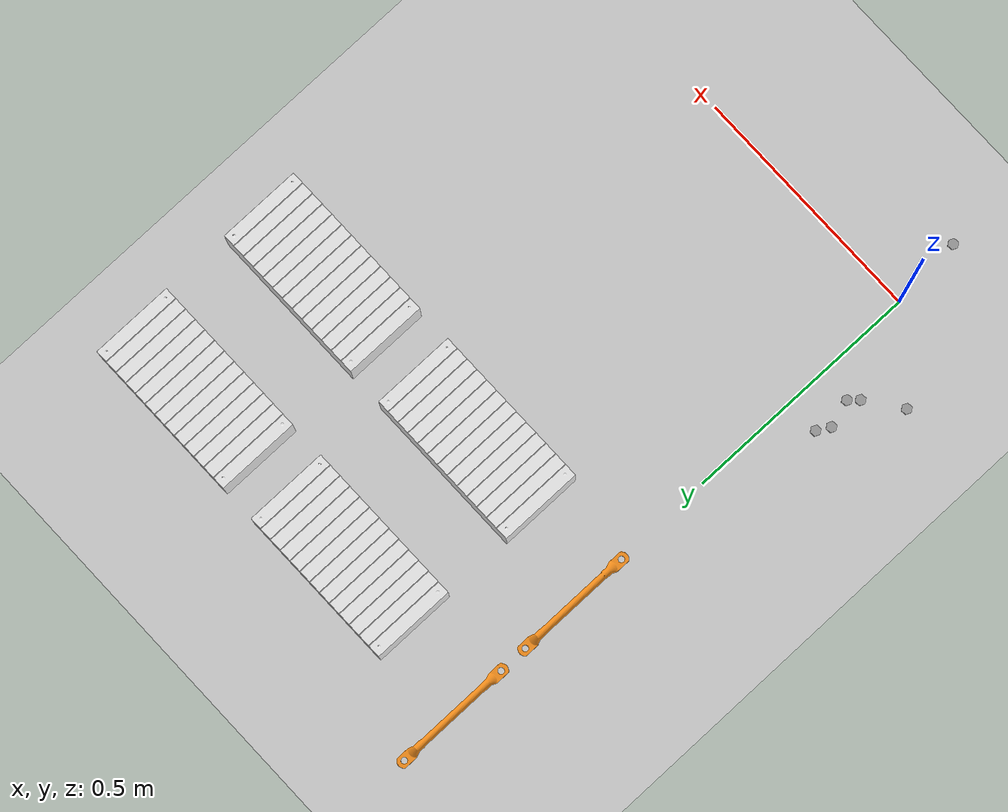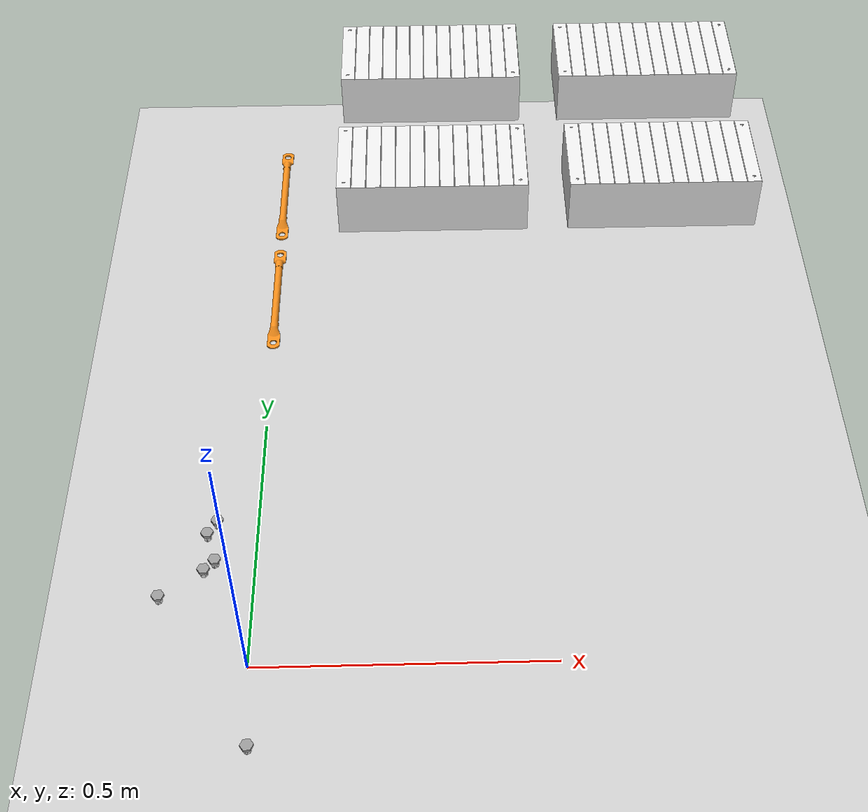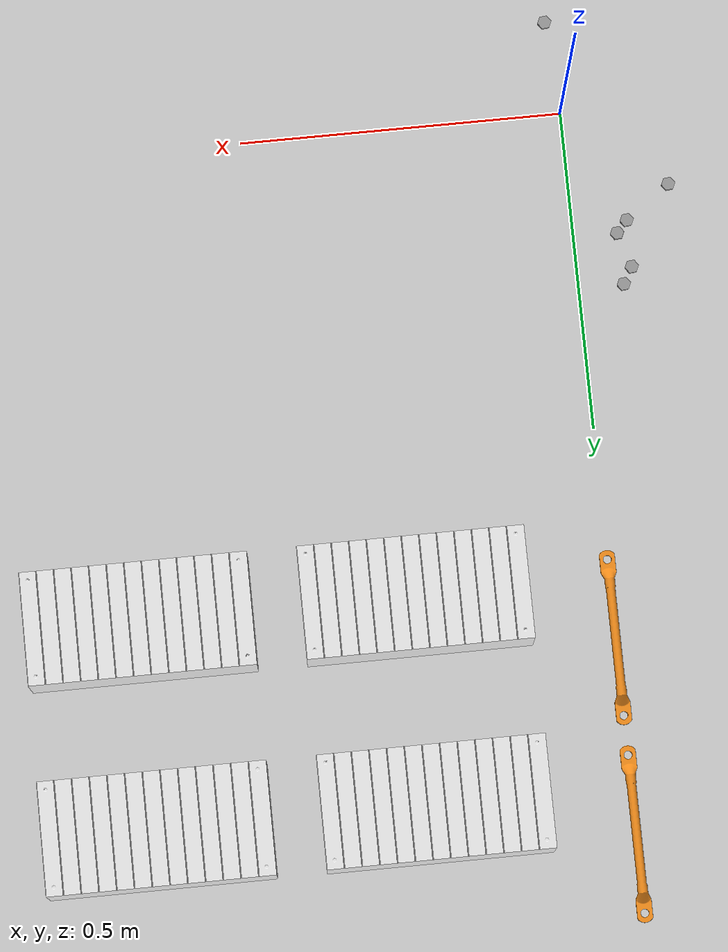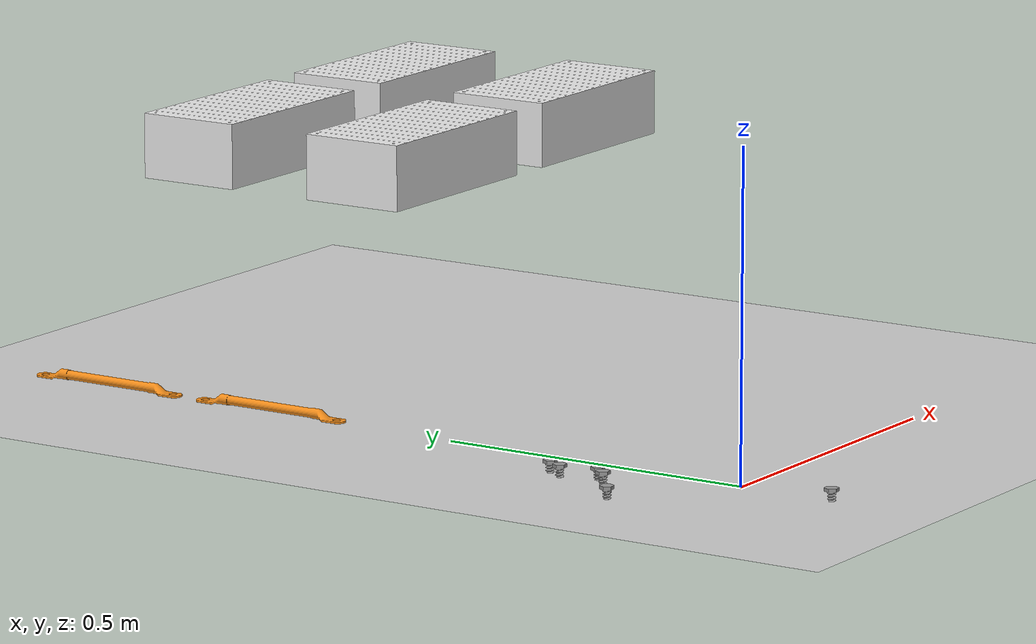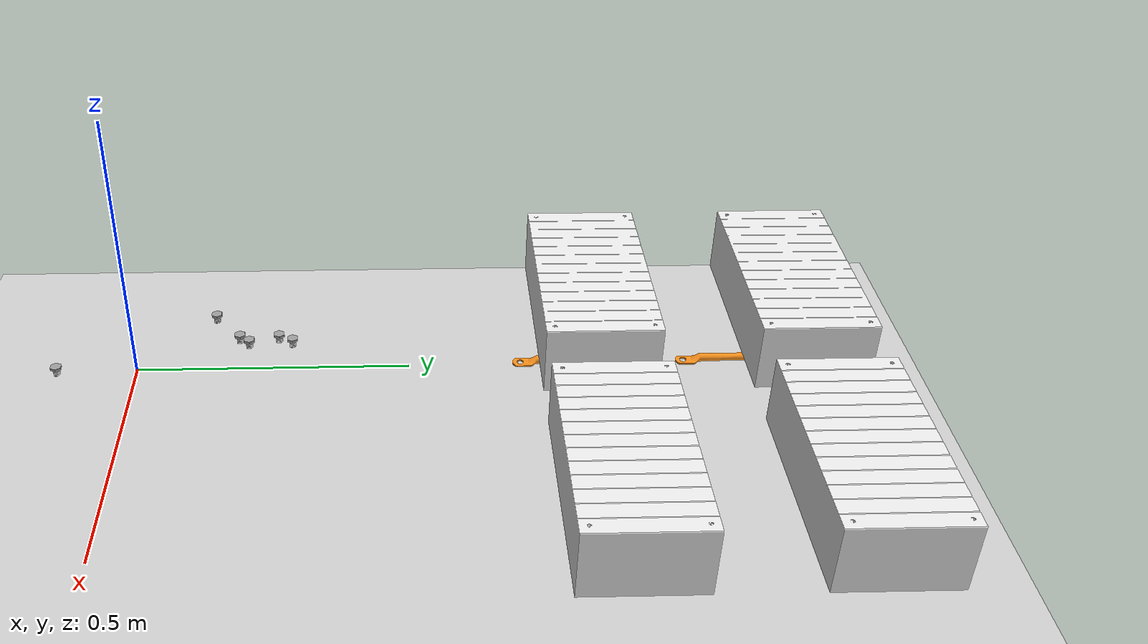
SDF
<sdf version="1.6">
 <world name="Pack6">
  <include><uri>model://sun</uri></include>
  <include><uri>model://ground_plane</uri></include>
  <include>
   <uri>/home/wanghu26/battery_ws/src/battery_model/model_editor_models/HW_battery_module_sc_v_half</uri>
   <pose>0.308 0.775 0.40 0 0 0</pose>
  </include>
  <include>
   <uri>/home/wanghu26/battery_ws/src/battery_model/model_editor_models/HW_battery_module_sc_v_1_half</uri>
   <pose>0.308 1.078 0.40 0 0 0</pose>
  </include>
  <include>
   <uri>/home/wanghu26/battery_ws/src/battery_model/model_editor_models/HW_battery_module_sc_v_2_half</uri>
   <pose>0.71 1.078 0.40 0 0 0</pose>
  </include>
  <include>
   <uri>/home/wanghu26/battery_ws/src/battery_model/model_editor_models/HW_battery_module_sc_v_3_half</uri>
   <pose>0.71 0.775 0.40 0 0 0</pose>
  </include>
  <include>
   <uri>/home/wanghu26/battery_ws/src/battery_model/model_editor_models/HW_tap_bolt_sc_f_0</uri>
   <pose>-0.155 0.13 0 0 0 0</pose>
  </include>
  <include>
   <uri>/home/wanghu26/battery_ws/src/battery_model/model_editor_models/HW_tap_bolt_sc_f_1</uri>
   <pose>-0.07 0.2810 0 0 0 0</pose>
  </include>
  <include>
   <uri>/home/wanghu26/battery_ws/src/battery_model/model_editor_models/HW_tap_bolt_sc_f_2</uri>
   <pose>0.01 -0.145 0 0 0 0</pose>
  </include>
  <include>
   <uri>/home/wanghu26/battery_ws/src/battery_model/model_editor_models/HW_tap_bolt_sc_f_3</uri>
   <pose>-0.085 0.255 0 0 0 0</pose>
  </include>
  <include>
   <uri>/home/wanghu26/battery_ws/src/battery_model/model_editor_models/HW_tap_bolt_sc_f_4</uri>
   <pose>-0.085 0.1810 0 0 0 0</pose>
  </include>
  <include>
   <uri>/home/wanghu26/battery_ws/src/battery_model/model_editor_models/HW_tap_bolt_sc_f_5</uri>
   <pose>-0.068 0.200 0 0 0 0</pose>
  </include>
  <include>
   <uri>/home/wanghu26/battery_ws/src/battery_model/model_editor_models/HW_HV_cable_sc_f</uri>
   <pose>0 1.128 0.01 0 0 0</pose>
  </include>
  <include>
   <uri>/home/wanghu26/battery_ws/src/battery_model/model_editor_models/HW_HV_cable_sc_f_1</uri>
   <pose>0.0 0.826 0.01 0 0 0</pose>
  </include>
 </world>
</sdf>

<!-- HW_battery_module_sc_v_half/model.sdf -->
<sdf version='1.6'>
  <model name='HW_battery_module_sc_v_half'>
    <link name='link_1'>
      <inertial>
        <mass>0.1</mass>
        <inertia>
          <ixx>0.01275</ixx>
          <ixy>0</ixy>
          <ixz>0</ixz>
          <iyy>0.03997</iyy>
          <iyz>0</iyz>
          <izz>0.04538</izz>
        </inertia>
      </inertial>
      <pose>-0 0 0 0 -0 0</pose>
      <visual name='visual'>
         <pose frame=''>0 0 -0.05 0 -0 0</pose>
        <geometry>
          <mesh>
            <uri>/home/wanghu26/battery_ws/src/battery_model/battery_model_stl/HW_Battery Module.stl</uri>
            <scale>0.5 0.5 0.5</scale>
          </mesh>
        </geometry>
        <material>
          <lighting>1</lighting>
          <script>
            <uri>file://media/materials/scripts/gazebo.material</uri>
            <name>Gazebo/White</name>
          </script>
          <shader type='pixel'/>
        </material>
        <transparency>0</transparency>
        <cast_shadows>1</cast_shadows>
      </visual>
      <collision name='collision'>
        <laser_retro>0</laser_retro>
        <max_contacts>10</max_contacts>
        <pose frame=''>0 0 -0.05 0 -0 0</pose>
        <geometry>
          <box>
            <size>0.33 0.165 0.105</size>
          </box>
        </geometry>
        <surface>
          <friction>
            <ode>
              <mu>1</mu>
              <mu2>1</mu2>
              <fdir1>0 0 0</fdir1>
              <slip1>0</slip1>
              <slip2>0</slip2>
            </ode>
            <torsional>
              <coefficient>1</coefficient>
              <patch_radius>0</patch_radius>
              <surface_radius>0</surface_radius>
              <use_patch_radius>1</use_patch_radius>
              <ode>
                <slip>0</slip>
              </ode>
            </torsional>
          </friction>
          <bounce>
            <restitution_coefficient>0</restitution_coefficient>
            <threshold>1e+06</threshold>
          </bounce>
          <contact>
            <collide_without_contact>0</collide_without_contact>
            <collide_without_contact_bitmask>1</collide_without_contact_bitmask>
            <collide_bitmask>1</collide_bitmask>
            <ode>
              <soft_cfm>0</soft_cfm>
              <soft_erp>0.2</soft_erp>
              <kp>1e+13</kp>
              <kd>1</kd>
              <max_vel>0.01</max_vel>
              <min_depth>0.0001</min_depth>
            </ode>
            <bullet>
              <split_impulse>1</split_impulse>
              <split_impulse_penetration_threshold>-0.01</split_impulse_penetration_threshold>
              <soft_cfm>0</soft_cfm>
              <soft_erp>0.2</soft_erp>
              <kp>1e+13</kp>
              <kd>1</kd>
            </bullet>
          </contact>
        </surface>
      </collision>
    </link>
    <static>0</static>
    <allow_auto_disable>1</allow_auto_disable>
  </model>
</sdf>

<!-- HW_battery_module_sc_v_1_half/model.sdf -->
<sdf version='1.6'>
  <model name='HW_battery_module_sc_v_1_half'>
    <link name='link_1'>
      <inertial>
        <mass>0.1</mass>
        <inertia>
          <ixx>0.01275</ixx>
          <ixy>0</ixy>
          <ixz>0</ixz>
          <iyy>0.03997</iyy>
          <iyz>0</iyz>
          <izz>0.04538</izz>
        </inertia>
      </inertial>
      <pose>-0 0 0 0 -0 0</pose>
      <visual name='visual'>
         <pose frame=''>0 0 -0.05 0 -0 0</pose>
        <geometry>
          <mesh>
            <uri>/home/wanghu26/battery_ws/src/battery_model/battery_model_stl/HW_Battery Module.stl</uri>
            <scale>0.5 0.5 0.5</scale>
          </mesh>
        </geometry>
        <material>
          <lighting>1</lighting>
          <script>
            <uri>file://media/materials/scripts/gazebo.material</uri>
            <name>Gazebo/White</name>
          </script>
          <shader type='pixel'/>
        </material>
        <transparency>0</transparency>
        <cast_shadows>1</cast_shadows>
      </visual>
      <collision name='collision'>
        <laser_retro>0</laser_retro>
        <max_contacts>10</max_contacts>
        <pose frame=''>0 0 -0.05 0 -0 0</pose>
        <geometry>
          <box>
            <size>0.33 0.165 0.105</size>
          </box>
        </geometry>
        <surface>
          <friction>
            <ode>
              <mu>1</mu>
              <mu2>1</mu2>
              <fdir1>0 0 0</fdir1>
              <slip1>0</slip1>
              <slip2>0</slip2>
            </ode>
            <torsional>
              <coefficient>1</coefficient>
              <patch_radius>0</patch_radius>
              <surface_radius>0</surface_radius>
              <use_patch_radius>1</use_patch_radius>
              <ode>
                <slip>0</slip>
              </ode>
            </torsional>
          </friction>
          <bounce>
            <restitution_coefficient>0</restitution_coefficient>
            <threshold>1e+06</threshold>
          </bounce>
          <contact>
            <collide_without_contact>0</collide_without_contact>
            <collide_without_contact_bitmask>1</collide_without_contact_bitmask>
            <collide_bitmask>1</collide_bitmask>
            <ode>
              <soft_cfm>0</soft_cfm>
              <soft_erp>0.2</soft_erp>
              <kp>1e+13</kp>
              <kd>1</kd>
              <max_vel>0.01</max_vel>
              <min_depth>0.0001</min_depth>
            </ode>
            <bullet>
              <split_impulse>1</split_impulse>
              <split_impulse_penetration_threshold>-0.01</split_impulse_penetration_threshold>
              <soft_cfm>0</soft_cfm>
              <soft_erp>0.2</soft_erp>
              <kp>1e+13</kp>
              <kd>1</kd>
            </bullet>
          </contact>
        </surface>
      </collision>
    </link>
    <static>0</static>
    <allow_auto_disable>1</allow_auto_disable>
  </model>
</sdf>

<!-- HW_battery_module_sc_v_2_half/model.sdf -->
<sdf version='1.6'>
  <model name='HW_battery_module_sc_v_2_half'>
    <link name='link_1'>
      <inertial>
        <mass>0.1</mass>
        <inertia>
          <ixx>0.01275</ixx>
          <ixy>0</ixy>
          <ixz>0</ixz>
          <iyy>0.03997</iyy>
          <iyz>0</iyz>
          <izz>0.04538</izz>
        </inertia>
      </inertial>
      <pose>-0 0 0 0 -0 0</pose>
      <visual name='visual'>
         <pose frame=''>0 0 -0.05 0 -0 0</pose>
        <geometry>
          <mesh>
            <uri>/home/wanghu26/battery_ws/src/battery_model/battery_model_stl/HW_Battery Module.stl</uri>
            <scale>0.5 0.5 0.5</scale>
          </mesh>
        </geometry>
        <material>
          <lighting>1</lighting>
          <script>
            <uri>file://media/materials/scripts/gazebo.material</uri>
            <name>Gazebo/White</name>
          </script>
          <shader type='pixel'/>
        </material>
        <transparency>0</transparency>
        <cast_shadows>1</cast_shadows>
      </visual>
      <collision name='collision'>
        <laser_retro>0</laser_retro>
        <max_contacts>10</max_contacts>
        <pose frame=''>0 0 -0.05 0 -0 0</pose>
        <geometry>
          <box>
            <size>0.33 0.165 0.105</size>
          </box>
        </geometry>
        <surface>
          <friction>
            <ode>
              <mu>1</mu>
              <mu2>1</mu2>
              <fdir1>0 0 0</fdir1>
              <slip1>0</slip1>
              <slip2>0</slip2>
            </ode>
            <torsional>
              <coefficient>1</coefficient>
              <patch_radius>0</patch_radius>
              <surface_radius>0</surface_radius>
              <use_patch_radius>1</use_patch_radius>
              <ode>
                <slip>0</slip>
              </ode>
            </torsional>
          </friction>
          <bounce>
            <restitution_coefficient>0</restitution_coefficient>
            <threshold>1e+06</threshold>
          </bounce>
          <contact>
            <collide_without_contact>0</collide_without_contact>
            <collide_without_contact_bitmask>1</collide_without_contact_bitmask>
            <collide_bitmask>1</collide_bitmask>
            <ode>
              <soft_cfm>0</soft_cfm>
              <soft_erp>0.2</soft_erp>
              <kp>1e+13</kp>
              <kd>1</kd>
              <max_vel>0.01</max_vel>
              <min_depth>0.0001</min_depth>
            </ode>
            <bullet>
              <split_impulse>1</split_impulse>
              <split_impulse_penetration_threshold>-0.01</split_impulse_penetration_threshold>
              <soft_cfm>0</soft_cfm>
              <soft_erp>0.2</soft_erp>
              <kp>1e+13</kp>
              <kd>1</kd>
            </bullet>
          </contact>
        </surface>
      </collision>
    </link>
    <static>0</static>
    <allow_auto_disable>1</allow_auto_disable>
  </model>
</sdf>

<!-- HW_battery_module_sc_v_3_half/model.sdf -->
<sdf version='1.6'>
  <model name='HW_battery_module_sc_v_3_half'>
    <link name='link_1'>
      <inertial>
        <mass>0.1</mass>
        <inertia>
          <ixx>0.01275</ixx>
          <ixy>0</ixy>
          <ixz>0</ixz>
          <iyy>0.03997</iyy>
          <iyz>0</iyz>
          <izz>0.04538</izz>
        </inertia>
      </inertial>
      <pose>-0 0 0 0 -0 0</pose>
      <visual name='visual'>
         <pose frame=''>0 0 -0.05 0 -0 0</pose>
        <geometry>
          <mesh>
            <uri>/home/wanghu26/battery_ws/src/battery_model/battery_model_stl/HW_Battery Module.stl</uri>
            <scale>0.5 0.5 0.5</scale>
          </mesh>
        </geometry>
        <material>
          <lighting>1</lighting>
          <script>
            <uri>file://media/materials/scripts/gazebo.material</uri>
            <name>Gazebo/White</name>
          </script>
          <shader type='pixel'/>
        </material>
        <transparency>0</transparency>
        <cast_shadows>1</cast_shadows>
      </visual>
      <collision name='collision'>
        <laser_retro>0</laser_retro>
        <max_contacts>10</max_contacts>
        <pose frame=''>0 0 -0.05 0 -0 0</pose>
        <geometry>
          <box>
            <size>0.33 0.165 0.105</size>
          </box>
        </geometry>
        <surface>
          <friction>
            <ode>
              <mu>1</mu>
              <mu2>1</mu2>
              <fdir1>0 0 0</fdir1>
              <slip1>0</slip1>
              <slip2>0</slip2>
            </ode>
            <torsional>
              <coefficient>1</coefficient>
              <patch_radius>0</patch_radius>
              <surface_radius>0</surface_radius>
              <use_patch_radius>1</use_patch_radius>
              <ode>
                <slip>0</slip>
              </ode>
            </torsional>
          </friction>
          <bounce>
            <restitution_coefficient>0</restitution_coefficient>
            <threshold>1e+06</threshold>
          </bounce>
          <contact>
            <collide_without_contact>0</collide_without_contact>
            <collide_without_contact_bitmask>1</collide_without_contact_bitmask>
            <collide_bitmask>1</collide_bitmask>
            <ode>
              <soft_cfm>0</soft_cfm>
              <soft_erp>0.2</soft_erp>
              <kp>1e+13</kp>
              <kd>1</kd>
              <max_vel>0.01</max_vel>
              <min_depth>0.0001</min_depth>
            </ode>
            <bullet>
              <split_impulse>1</split_impulse>
              <split_impulse_penetration_threshold>-0.01</split_impulse_penetration_threshold>
              <soft_cfm>0</soft_cfm>
              <soft_erp>0.2</soft_erp>
              <kp>1e+13</kp>
              <kd>1</kd>
            </bullet>
          </contact>
        </surface>
      </collision>
    </link>
    <static>0</static>
    <allow_auto_disable>1</allow_auto_disable>
  </model>
</sdf>

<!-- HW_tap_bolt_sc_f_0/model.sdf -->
<sdf version='1.6'>
  <model name='HW_tap_bolt_sc_f_0'>
    <link name='link_2'>
      <inertial>
        <mass>1</mass>
        <inertia>
          <ixx>0.0166667</ixx>
          <ixy>0</ixy>
          <ixz>0</ixz>
          <iyy>0.0166667</iyy>
          <iyz>0</iyz>
          <izz>0.0166667</izz>
        </inertia>
      </inertial>
      <pose>0 0 -1e-06 3.14159 -0.002979 3.14159</pose>
      <visual name='visual'>
        <pose>0 0 0 0 -0 0</pose>
        <geometry>
          <mesh>
            <uri>/home/wanghu26/battery_ws/src/battery_model/battery_model_stl/HW_hex_bolt_tap_thread.stl</uri>
            <scale>1 1 1</scale>
          </mesh>
        </geometry>
        <material>
          <lighting>1</lighting>
          <script>
            <uri>file://media/materials/scripts/gazebo.material</uri>
            <name>Gazebo/Grey</name>
          </script>
          <shader type='pixel'/>
        </material>
        <transparency>0</transparency>
        <cast_shadows>1</cast_shadows>
      </visual>
      <collision name='collision'>
        <laser_retro>0</laser_retro>
        <max_contacts>10</max_contacts>
        <pose>0 -0.1 0 0 -0 0</pose>
        <geometry>
          <box>
            <size>0.02 0.02 0.04</size>
          </box>
        </geometry>
        <surface>
          <friction>
            <ode>
              <mu>1</mu>
              <mu2>1</mu2>
              <fdir1>0 0 0</fdir1>
              <slip1>0</slip1>
              <slip2>0</slip2>
            </ode>
            <torsional>
              <coefficient>1</coefficient>
              <patch_radius>0.1</patch_radius>
              <surface_radius>0.1</surface_radius>
              <use_patch_radius>1</use_patch_radius>
              <ode>
                <slip>0</slip>
              </ode>
            </torsional>
          </friction>
          <bounce>
            <restitution_coefficient>0</restitution_coefficient>
            <threshold>1e+06</threshold>
          </bounce>
          <contact>
            <collide_without_contact>0</collide_without_contact>
            <collide_without_contact_bitmask>1</collide_without_contact_bitmask>
            <collide_bitmask>1</collide_bitmask>
            <ode>
              <soft_cfm>0</soft_cfm>
              <soft_erp>0.2</soft_erp>
              <kp>1e+13</kp>
              <kd>1</kd>
              <max_vel>0.01</max_vel>
              <min_depth>0</min_depth>
            </ode>
            <bullet>
              <split_impulse>1</split_impulse>
              <split_impulse_penetration_threshold>-0.01</split_impulse_penetration_threshold>
              <soft_cfm>0</soft_cfm>
              <soft_erp>0.2</soft_erp>
              <kp>1e+13</kp>
              <kd>1</kd>
            </bullet>
          </contact>
        </surface>
      </collision>
    </link>
    <static>1</static>
    <allow_auto_disable>1</allow_auto_disable>
  </model>
</sdf>

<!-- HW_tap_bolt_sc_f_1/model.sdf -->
<sdf version='1.6'>
  <model name='HW_tap_bolt_sc_f_1'>
    <link name='link_2'>
      <inertial>
        <mass>1</mass>
        <inertia>
          <ixx>0.0166667</ixx>
          <ixy>0</ixy>
          <ixz>0</ixz>
          <iyy>0.0166667</iyy>
          <iyz>0</iyz>
          <izz>0.0166667</izz>
        </inertia>
      </inertial>
      <pose>0 0 -1e-06 3.14159 -0.002979 3.14159</pose>
      <visual name='visual'>
        <pose>0 0 0 0 -0 0</pose>
        <geometry>
          <mesh>
            <uri>/home/wanghu26/battery_ws/src/battery_model/battery_model_stl/HW_hex_bolt_tap_thread.stl</uri>
            <scale>1 1 1</scale>
          </mesh>
        </geometry>
        <material>
          <lighting>1</lighting>
          <script>
            <uri>file://media/materials/scripts/gazebo.material</uri>
            <name>Gazebo/Grey</name>
          </script>
          <shader type='pixel'/>
        </material>
        <transparency>0</transparency>
        <cast_shadows>1</cast_shadows>
      </visual>
      <collision name='collision'>
        <laser_retro>0</laser_retro>
        <max_contacts>10</max_contacts>
        <pose>0 0.1 0 0 -0 0</pose>
        <geometry>
          <box>
            <size>0.02 0.02 0.04</size>
          </box>
        </geometry>
        <surface>
          <friction>
            <ode>
              <mu>1</mu>
              <mu2>1</mu2>
              <fdir1>0 0 0</fdir1>
              <slip1>0</slip1>
              <slip2>0</slip2>
            </ode>
            <torsional>
              <coefficient>1</coefficient>
              <patch_radius>0.1</patch_radius>
              <surface_radius>0.1</surface_radius>
              <use_patch_radius>1</use_patch_radius>
              <ode>
                <slip>0</slip>
              </ode>
            </torsional>
          </friction>
          <bounce>
            <restitution_coefficient>0</restitution_coefficient>
            <threshold>1e+06</threshold>
          </bounce>
          <contact>
            <collide_without_contact>0</collide_without_contact>
            <collide_without_contact_bitmask>1</collide_without_contact_bitmask>
            <collide_bitmask>1</collide_bitmask>
            <ode>
              <soft_cfm>0</soft_cfm>
              <soft_erp>0.2</soft_erp>
              <kp>1e+13</kp>
              <kd>1</kd>
              <max_vel>0.01</max_vel>
              <min_depth>0</min_depth>
            </ode>
            <bullet>
              <split_impulse>1</split_impulse>
              <split_impulse_penetration_threshold>-0.01</split_impulse_penetration_threshold>
              <soft_cfm>0</soft_cfm>
              <soft_erp>0.2</soft_erp>
              <kp>1e+13</kp>
              <kd>1</kd>
            </bullet>
          </contact>
        </surface>
      </collision>
    </link>
    <static>1</static>
    <allow_auto_disable>1</allow_auto_disable>
  </model>
</sdf>

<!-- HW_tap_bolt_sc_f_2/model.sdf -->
<sdf version='1.6'>
  <model name='HW_tap_bolt_sc_f_2'>
    <link name='link_2'>
      <inertial>
        <mass>1</mass>
        <inertia>
          <ixx>0.0166667</ixx>
          <ixy>0</ixy>
          <ixz>0</ixz>
          <iyy>0.0166667</iyy>
          <iyz>0</iyz>
          <izz>0.0166667</izz>
        </inertia>
      </inertial>
      <pose>0 0 -1e-06 3.14159 -0.002979 3.14159</pose>
      <visual name='visual'>
        <pose>0 0 0 0 -0 0</pose>
        <geometry>
          <mesh>
            <uri>/home/wanghu26/battery_ws/src/battery_model/battery_model_stl/HW_hex_bolt_tap_thread.stl</uri>
            <scale>1 1 1</scale>
          </mesh>
        </geometry>
        <material>
          <lighting>1</lighting>
          <script>
            <uri>file://media/materials/scripts/gazebo.material</uri>
            <name>Gazebo/Grey</name>
          </script>
          <shader type='pixel'/>
        </material>
        <transparency>0</transparency>
        <cast_shadows>1</cast_shadows>
      </visual>
      <collision name='collision'>
        <laser_retro>0</laser_retro>
        <max_contacts>10</max_contacts>
        <pose>0 0.1 0 0 -0 0</pose>
        <geometry>
          <box>
            <size>0.02 0.02 0.04</size>
          </box>
        </geometry>
        <surface>
          <friction>
            <ode>
              <mu>1</mu>
              <mu2>1</mu2>
              <fdir1>0 0 0</fdir1>
              <slip1>0</slip1>
              <slip2>0</slip2>
            </ode>
            <torsional>
              <coefficient>1</coefficient>
              <patch_radius>0.1</patch_radius>
              <surface_radius>0.1</surface_radius>
              <use_patch_radius>1</use_patch_radius>
              <ode>
                <slip>0</slip>
              </ode>
            </torsional>
          </friction>
          <bounce>
            <restitution_coefficient>0</restitution_coefficient>
            <threshold>1e+06</threshold>
          </bounce>
          <contact>
            <collide_without_contact>0</collide_without_contact>
            <collide_without_contact_bitmask>1</collide_without_contact_bitmask>
            <collide_bitmask>1</collide_bitmask>
            <ode>
              <soft_cfm>0</soft_cfm>
              <soft_erp>0.2</soft_erp>
              <kp>1e+13</kp>
              <kd>1</kd>
              <max_vel>0.01</max_vel>
              <min_depth>0</min_depth>
            </ode>
            <bullet>
              <split_impulse>1</split_impulse>
              <split_impulse_penetration_threshold>-0.01</split_impulse_penetration_threshold>
              <soft_cfm>0</soft_cfm>
              <soft_erp>0.2</soft_erp>
              <kp>1e+13</kp>
              <kd>1</kd>
            </bullet>
          </contact>
        </surface>
      </collision>
    </link>
    <static>1</static>
    <allow_auto_disable>1</allow_auto_disable>
  </model>
</sdf>

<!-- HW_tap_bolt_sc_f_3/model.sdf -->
<sdf version='1.6'>
  <model name='HW_tap_bolt_sc_f_3'>
    <link name='link_2'>
      <inertial>
        <mass>1</mass>
        <inertia>
          <ixx>0.0166667</ixx>
          <ixy>0</ixy>
          <ixz>0</ixz>
          <iyy>0.0166667</iyy>
          <iyz>0</iyz>
          <izz>0.0166667</izz>
        </inertia>
      </inertial>
      <pose>0 0 -1e-06 3.14159 -0.002979 3.14159</pose>
      <visual name='visual'>
        <pose>0 0 0 0 -0 0</pose>
        <geometry>
          <mesh>
            <uri>/home/wanghu26/battery_ws/src/battery_model/battery_model_stl/HW_hex_bolt_tap_thread.stl</uri>
            <scale>1 1 1</scale>
          </mesh>
        </geometry>
        <material>
          <lighting>1</lighting>
          <script>
            <uri>file://media/materials/scripts/gazebo.material</uri>
            <name>Gazebo/Grey</name>
          </script>
          <shader type='pixel'/>
        </material>
        <transparency>0</transparency>
        <cast_shadows>1</cast_shadows>
      </visual>
      <collision name='collision'>
        <laser_retro>0</laser_retro>
        <max_contacts>10</max_contacts>
        <pose>0 0.1 0 0 -0 0</pose>
        <geometry>
          <box>
            <size>0.02 0.02 0.04</size>
          </box>
        </geometry>
        <surface>
          <friction>
            <ode>
              <mu>1</mu>
              <mu2>1</mu2>
              <fdir1>0 0 0</fdir1>
              <slip1>0</slip1>
              <slip2>0</slip2>
            </ode>
            <torsional>
              <coefficient>1</coefficient>
              <patch_radius>0.1</patch_radius>
              <surface_radius>0.1</surface_radius>
              <use_patch_radius>1</use_patch_radius>
              <ode>
                <slip>0</slip>
              </ode>
            </torsional>
          </friction>
          <bounce>
            <restitution_coefficient>0</restitution_coefficient>
            <threshold>1e+06</threshold>
          </bounce>
          <contact>
            <collide_without_contact>0</collide_without_contact>
            <collide_without_contact_bitmask>1</collide_without_contact_bitmask>
            <collide_bitmask>1</collide_bitmask>
            <ode>
              <soft_cfm>0</soft_cfm>
              <soft_erp>0.2</soft_erp>
              <kp>1e+13</kp>
              <kd>1</kd>
              <max_vel>0.01</max_vel>
              <min_depth>0</min_depth>
            </ode>
            <bullet>
              <split_impulse>1</split_impulse>
              <split_impulse_penetration_threshold>-0.01</split_impulse_penetration_threshold>
              <soft_cfm>0</soft_cfm>
              <soft_erp>0.2</soft_erp>
              <kp>1e+13</kp>
              <kd>1</kd>
            </bullet>
          </contact>
        </surface>
      </collision>
    </link>
    <static>1</static>
    <allow_auto_disable>1</allow_auto_disable>
  </model>
</sdf>

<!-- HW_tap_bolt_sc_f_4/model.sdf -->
<sdf version='1.6'>
  <model name='HW_tap_bolt_sc_f_4'>
    <link name='link_2'>
      <inertial>
        <mass>1</mass>
        <inertia>
          <ixx>0.0166667</ixx>
          <ixy>0</ixy>
          <ixz>0</ixz>
          <iyy>0.0166667</iyy>
          <iyz>0</iyz>
          <izz>0.0166667</izz>
        </inertia>
      </inertial>
      <pose>0 0 -1e-06 3.14159 -0.002979 3.14159</pose>
      <visual name='visual'>
        <pose>0 0 0 0 -0 0</pose>
        <geometry>
          <mesh>
            <uri>/home/wanghu26/battery_ws/src/battery_model/battery_model_stl/HW_hex_bolt_tap_thread.stl</uri>
            <scale>1 1 1</scale>
          </mesh>
        </geometry>
        <material>
          <lighting>1</lighting>
          <script>
            <uri>file://media/materials/scripts/gazebo.material</uri>
            <name>Gazebo/Grey</name>
          </script>
          <shader type='pixel'/>
        </material>
        <transparency>0</transparency>
        <cast_shadows>1</cast_shadows>
      </visual>
      <collision name='collision'>
        <laser_retro>0</laser_retro>
        <max_contacts>10</max_contacts>
        <pose>0 0.1 0 0 -0 0</pose>
        <geometry>
          <box>
            <size>0.02 0.02 0.04</size>
          </box>
        </geometry>
        <surface>
          <friction>
            <ode>
              <mu>1</mu>
              <mu2>1</mu2>
              <fdir1>0 0 0</fdir1>
              <slip1>0</slip1>
              <slip2>0</slip2>
            </ode>
            <torsional>
              <coefficient>1</coefficient>
              <patch_radius>0.1</patch_radius>
              <surface_radius>0.1</surface_radius>
              <use_patch_radius>1</use_patch_radius>
              <ode>
                <slip>0</slip>
              </ode>
            </torsional>
          </friction>
          <bounce>
            <restitution_coefficient>0</restitution_coefficient>
            <threshold>1e+06</threshold>
          </bounce>
          <contact>
            <collide_without_contact>0</collide_without_contact>
            <collide_without_contact_bitmask>1</collide_without_contact_bitmask>
            <collide_bitmask>1</collide_bitmask>
            <ode>
              <soft_cfm>0</soft_cfm>
              <soft_erp>0.2</soft_erp>
              <kp>1e+13</kp>
              <kd>1</kd>
              <max_vel>0.01</max_vel>
              <min_depth>0</min_depth>
            </ode>
            <bullet>
              <split_impulse>1</split_impulse>
              <split_impulse_penetration_threshold>-0.01</split_impulse_penetration_threshold>
              <soft_cfm>0</soft_cfm>
              <soft_erp>0.2</soft_erp>
              <kp>1e+13</kp>
              <kd>1</kd>
            </bullet>
          </contact>
        </surface>
      </collision>
    </link>
    <static>1</static>
    <allow_auto_disable>1</allow_auto_disable>
  </model>
</sdf>

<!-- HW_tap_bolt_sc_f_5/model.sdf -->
<sdf version='1.6'>
  <model name='HW_tap_bolt_sc_f_5'>
    <link name='link_2'>
      <inertial>
        <mass>1</mass>
        <inertia>
          <ixx>0.0166667</ixx>
          <ixy>0</ixy>
          <ixz>0</ixz>
          <iyy>0.0166667</iyy>
          <iyz>0</iyz>
          <izz>0.0166667</izz>
        </inertia>
      </inertial>
      <pose>0 0 -1e-06 3.14159 -0.002979 3.14159</pose>
      <visual name='visual'>
        <pose>0 0 0 0 -0 0</pose>
        <geometry>
          <mesh>
            <uri>/home/wanghu26/battery_ws/src/battery_model/battery_model_stl/HW_hex_bolt_tap_thread.stl</uri>
            <scale>1 1 1</scale>
          </mesh>
        </geometry>
        <material>
          <lighting>1</lighting>
          <script>
            <uri>file://media/materials/scripts/gazebo.material</uri>
            <name>Gazebo/Grey</name>
          </script>
          <shader type='pixel'/>
        </material>
        <transparency>0</transparency>
        <cast_shadows>1</cast_shadows>
      </visual>
      <collision name='collision'>
        <laser_retro>0</laser_retro>
        <max_contacts>10</max_contacts>
        <pose>0 -0.1 0 0 -0 0</pose>
        <geometry>
          <box>
            <size>0.02 0.02 0.04</size>
          </box>
        </geometry>
        <surface>
          <friction>
            <ode>
              <mu>1</mu>
              <mu2>1</mu2>
              <fdir1>0 0 0</fdir1>
              <slip1>0</slip1>
              <slip2>0</slip2>
            </ode>
            <torsional>
              <coefficient>1</coefficient>
              <patch_radius>0.1</patch_radius>
              <surface_radius>0.1</surface_radius>
              <use_patch_radius>1</use_patch_radius>
              <ode>
                <slip>0</slip>
              </ode>
            </torsional>
          </friction>
          <bounce>
            <restitution_coefficient>0</restitution_coefficient>
            <threshold>1e+06</threshold>
          </bounce>
          <contact>
            <collide_without_contact>0</collide_without_contact>
            <collide_without_contact_bitmask>1</collide_without_contact_bitmask>
            <collide_bitmask>1</collide_bitmask>
            <ode>
              <soft_cfm>0</soft_cfm>
              <soft_erp>0.2</soft_erp>
              <kp>1e+13</kp>
              <kd>1</kd>
              <max_vel>0.01</max_vel>
              <min_depth>0</min_depth>
            </ode>
            <bullet>
              <split_impulse>1</split_impulse>
              <split_impulse_penetration_threshold>-0.01</split_impulse_penetration_threshold>
              <soft_cfm>0</soft_cfm>
              <soft_erp>0.2</soft_erp>
              <kp>1e+13</kp>
              <kd>1</kd>
            </bullet>
          </contact>
        </surface>
      </collision>
    </link>
    <static>1</static>
    <allow_auto_disable>1</allow_auto_disable>
  </model>
</sdf>

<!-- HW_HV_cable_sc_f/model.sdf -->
<sdf version='1.6'>
  <model name='HW_HV_cable_sc_f'>
    <link name='link_1'>
      <inertial>
        <mass>0.5</mass>
        <inertia>
          <ixx>0.0017</ixx>
          <ixy>0</ixy>
          <ixz>0</ixz>
          <iyy>3.3333e-4</iyy>
          <iyz>0</iyz>
          <izz>0.0017</izz>
        </inertia>
      </inertial>
      <pose>0 0 -0 0 -0 0</pose>
      <visual name='visual'>
        <pose>0 0 0 0 -0 0</pose>
        <geometry>
          <mesh>
            <uri>/home/wanghu26/battery_ws/src/battery_model/battery_model_stl/HW_HV_cable .stl</uri>
            <scale>1 1 1</scale>
          </mesh>
        </geometry>
        <material>
          <lighting>1</lighting>
          <script>
            <uri>file://media/materials/scripts/gazebo.material</uri>
            <name>Gazebo/Orange</name>
          </script>
          <shader type='pixel'/>
        </material>
        <transparency>0</transparency>
        <cast_shadows>1</cast_shadows>
      </visual>
      <collision name='collision'>
        <laser_retro>0</laser_retro>
        <max_contacts>10</max_contacts>
        <pose>0.2 0 0 0 -0 0</pose>
        <geometry>
            <box>
              <size>0.02 0.15 0.02</size>
            </box>
        </geometry>
        <surface>
          <friction>
            <ode>
              <mu>1</mu>
              <mu2>1</mu2>
              <fdir1>0 0 0</fdir1>
              <slip1>0</slip1>
              <slip2>0</slip2>
            </ode>
            <torsional>
              <coefficient>1</coefficient>
              <patch_radius>0</patch_radius>
              <surface_radius>0</surface_radius>
              <use_patch_radius>1</use_patch_radius>
              <ode>
                <slip>0</slip>
              </ode>
            </torsional>
          </friction>
          <bounce>
            <restitution_coefficient>0</restitution_coefficient>
            <threshold>1e+06</threshold>
          </bounce>
          <contact>
            <collide_without_contact>0</collide_without_contact>
            <collide_without_contact_bitmask>1</collide_without_contact_bitmask>
            <collide_bitmask>1</collide_bitmask>
            <ode>
              <soft_cfm>0</soft_cfm>
              <soft_erp>0.2</soft_erp>
              <kp>1e+13</kp>
              <kd>1</kd>
              <max_vel>0.01</max_vel>
              <min_depth>0</min_depth>
            </ode>
            <bullet>
              <split_impulse>1</split_impulse>
              <split_impulse_penetration_threshold>-0.01</split_impulse_penetration_threshold>
              <soft_cfm>0</soft_cfm>
              <soft_erp>0.2</soft_erp>
              <kp>1e+13</kp>
              <kd>1</kd>
            </bullet>
          </contact>
        </surface>
      </collision>
    </link>
    <static>1</static>
    <allow_auto_disable>1</allow_auto_disable>

  <plugin name="groun_truth" filename="libgazebo_ros_p3d.so">
	<frameName>map</frameName>
	<bodyName>link_1</bodyName>
	<topicName>odom0a</topicName>
	<updateRate>30.0</updateRate>
  </plugin>

  </model>
</sdf>

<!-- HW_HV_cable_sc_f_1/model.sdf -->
<sdf version='1.6'>
  <model name='HW_HV_cable_sc_f_1'>
    <link name='link_1'>
      <inertial>
        <mass>0.5</mass>
        <inertia>
          <ixx>0.0017</ixx>
          <ixy>0</ixy>
          <ixz>0</ixz>
          <iyy>3.3333e-4</iyy>
          <iyz>0</iyz>
          <izz>0.0017</izz>
        </inertia>
      </inertial>
      <pose>0 0 -0 0 -0 0</pose>
      <visual name='visual'>
        <pose>0 0 0 0 -0 0</pose>
        <geometry>
          <mesh>
            <uri>/home/wanghu26/battery_ws/src/battery_model/battery_model_stl/HW_HV_cable .stl</uri>
            <scale>1 1 1</scale>
          </mesh>
        </geometry>
        <material>
          <lighting>1</lighting>
          <script>
            <uri>file://media/materials/scripts/gazebo.material</uri>
            <name>Gazebo/Orange</name>
          </script>
          <shader type='pixel'/>
        </material>
        <transparency>0</transparency>
        <cast_shadows>1</cast_shadows>
      </visual>
      <collision name='collision'>
        <laser_retro>0</laser_retro>
        <max_contacts>10</max_contacts>
        <pose>0.1 0 0 0 -0 0</pose>
        <geometry>
            <box>
              <size>0.02 0.2 0.02</size>
            </box>
        </geometry>
        <surface>
          <friction>
            <ode>
              <mu>1</mu>
              <mu2>1</mu2>
              <fdir1>0 0 0</fdir1>
              <slip1>0</slip1>
              <slip2>0</slip2>
            </ode>
            <torsional>
              <coefficient>1</coefficient>
              <patch_radius>0</patch_radius>
              <surface_radius>0</surface_radius>
              <use_patch_radius>1</use_patch_radius>
              <ode>
                <slip>0</slip>
              </ode>
            </torsional>
          </friction>
          <bounce>
            <restitution_coefficient>0</restitution_coefficient>
            <threshold>1e+06</threshold>
          </bounce>
          <contact>
            <collide_without_contact>0</collide_without_contact>
            <collide_without_contact_bitmask>1</collide_without_contact_bitmask>
            <collide_bitmask>1</collide_bitmask>
            <ode>
              <soft_cfm>0</soft_cfm>
              <soft_erp>0.2</soft_erp>
              <kp>1e+13</kp>
              <kd>1</kd>
              <max_vel>0.01</max_vel>
              <min_depth>0</min_depth>
            </ode>
            <bullet>
              <split_impulse>1</split_impulse>
              <split_impulse_penetration_threshold>-0.01</split_impulse_penetration_threshold>
              <soft_cfm>0</soft_cfm>
              <soft_erp>0.2</soft_erp>
              <kp>1e+13</kp>
              <kd>1</kd>
            </bullet>
          </contact>
        </surface>
      </collision>
    </link>
    <static>1</static>
    <allow_auto_disable>1</allow_auto_disable>

  <plugin name="groun_truth" filename="libgazebo_ros_p3d.so">
	<frameName>map</frameName>
	<bodyName>link_1</bodyName>
	<topicName>odom1a</topicName>
	<updateRate>30.0</updateRate>
  </plugin>

  </model>
</sdf>
